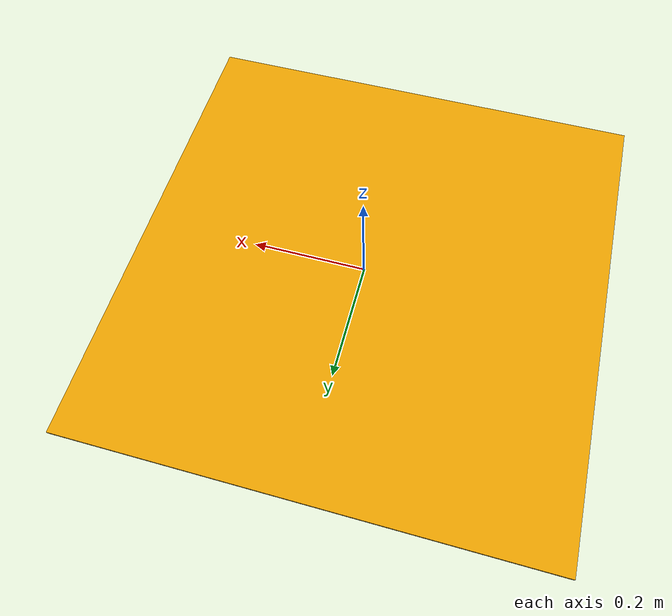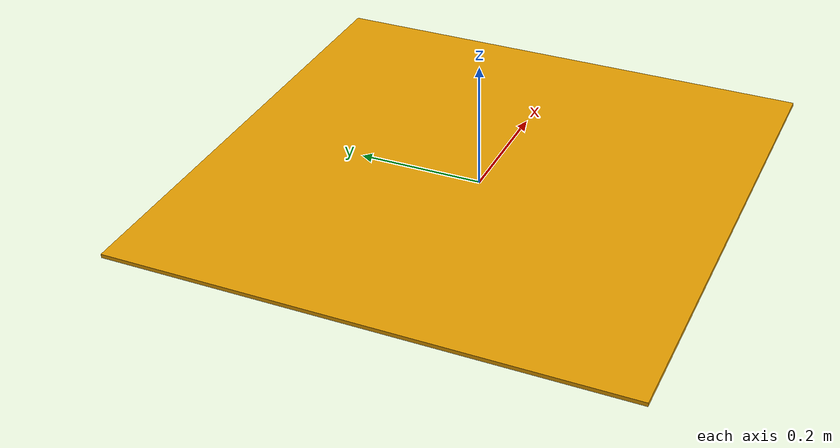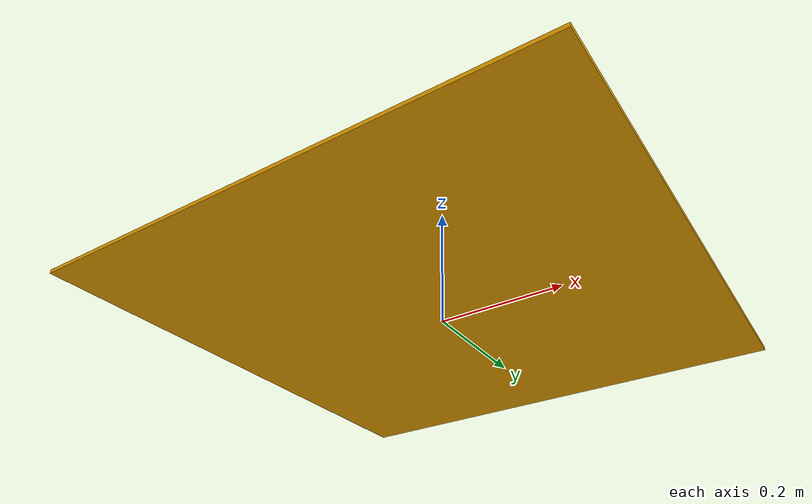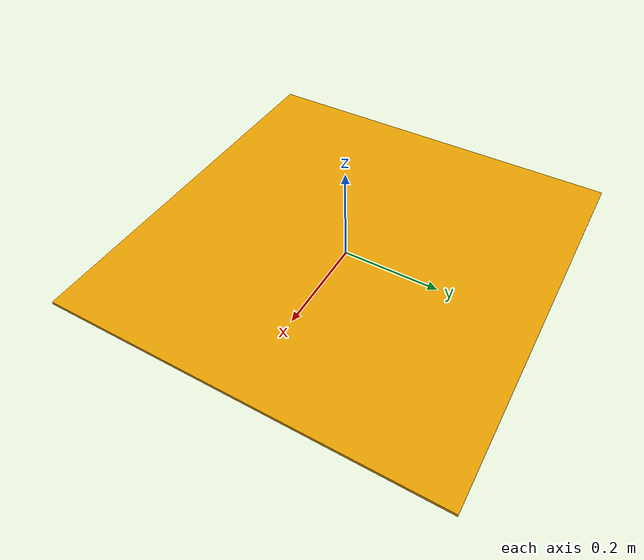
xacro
<?xml version="1.0" ?>
<robot name="aprilgrid" xmlns:xacro="http://www.ros.org/wiki/xacro">

	<!-- * * * Link Definitions * * * -->

    <link name="simple_box_base_link">
 	    <inertial>
            <origin xyz="0 0 0" rpy="0 0 0"/>
            <mass value="1.0" />
            <inertia ixx="0.0741666666667" ixy="0.0" ixz="0.0" iyy="0.0585416666667" iyz="0.0" izz="0.0260416666667"/>
        </inertial>
        <collision>
            <origin xyz="0 0 0.02" rpy="0 0 0"/>
            <geometry>
                <box size="0.8 0.8 0.006"/>
            </geometry>
        </collision>
        <visual>
            <origin rpy="0.0 0 0" xyz="0 0 0"/>
            <geometry>
                <mesh filename="package://cam_cal_sim/models/aprilgrid/aprilgrid3.dae"/>
            </geometry>
        </visual>
    </link>

    <gazebo reference="simple_box_base_link">
        <kp>100000.0</kp>
        <kd>100000.0</kd>
        <mu1>0.1</mu1>
        <mu2>0.1</mu2>
        <fdir1>1 0 0</fdir1>
    </gazebo>

</robot>
